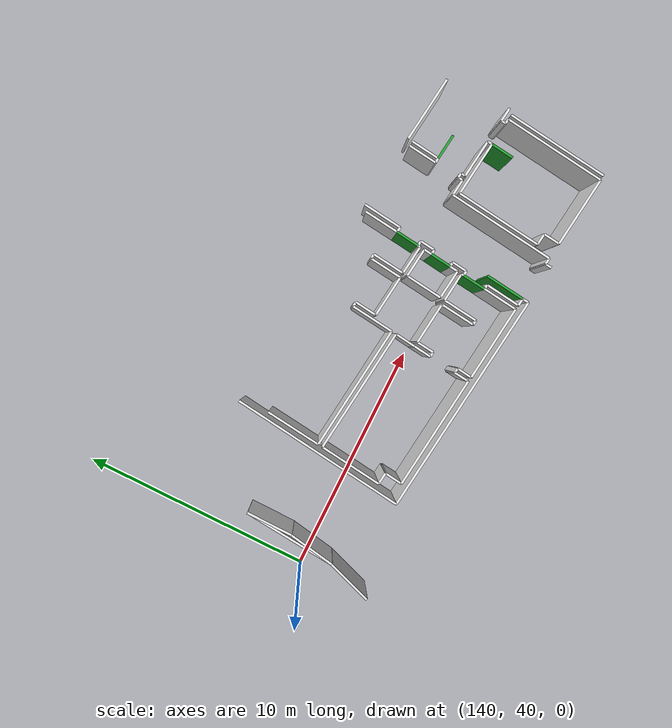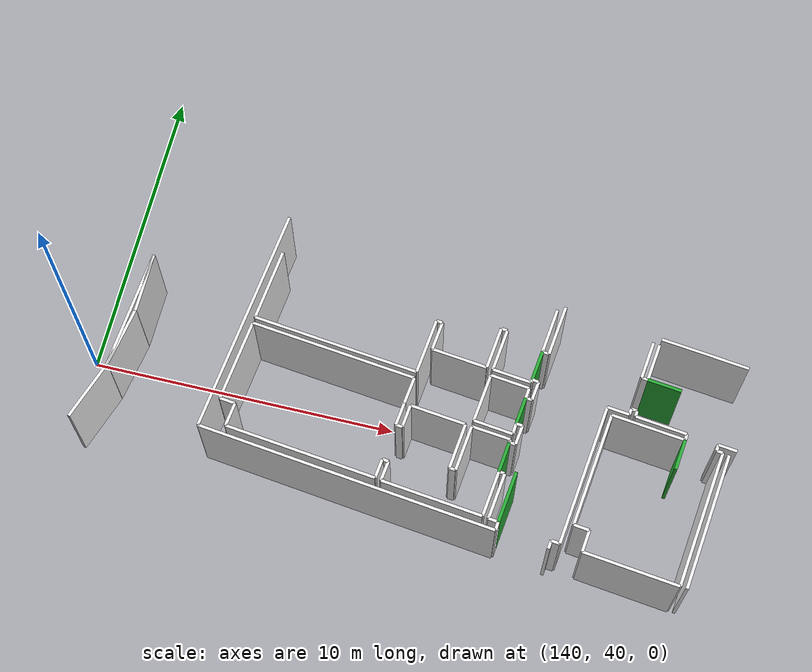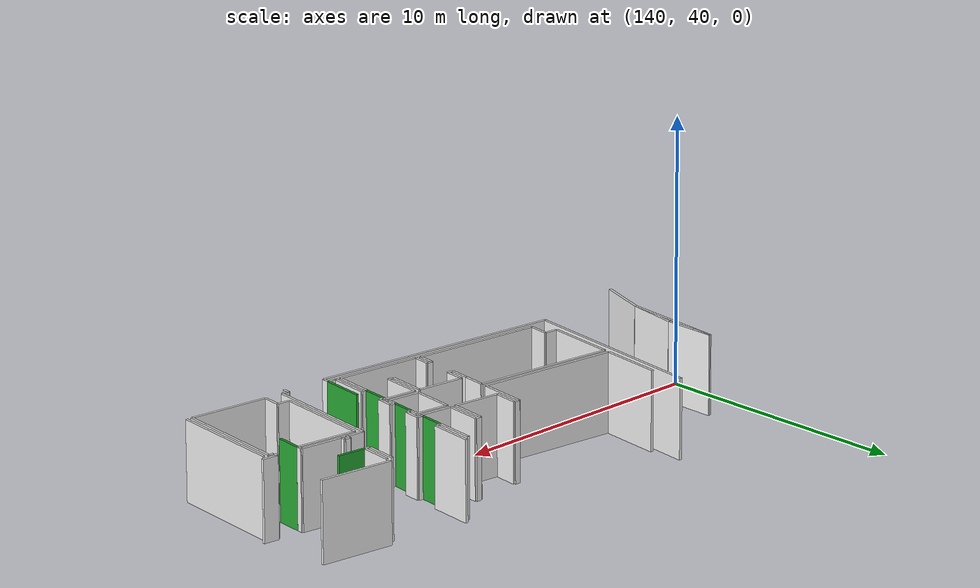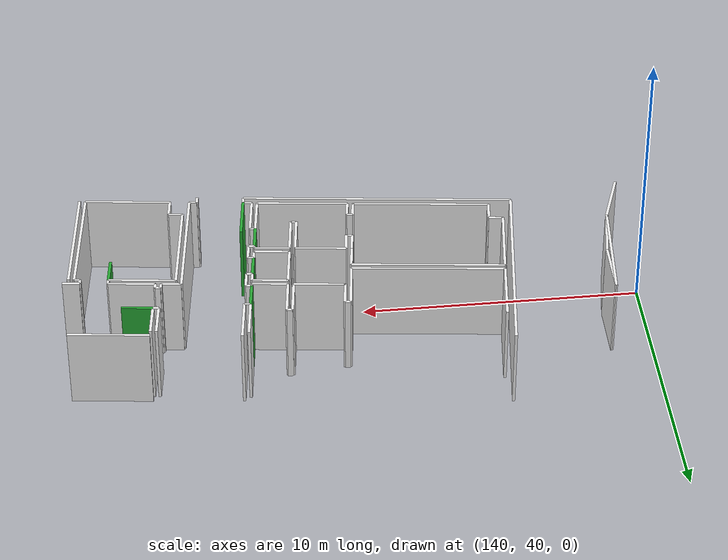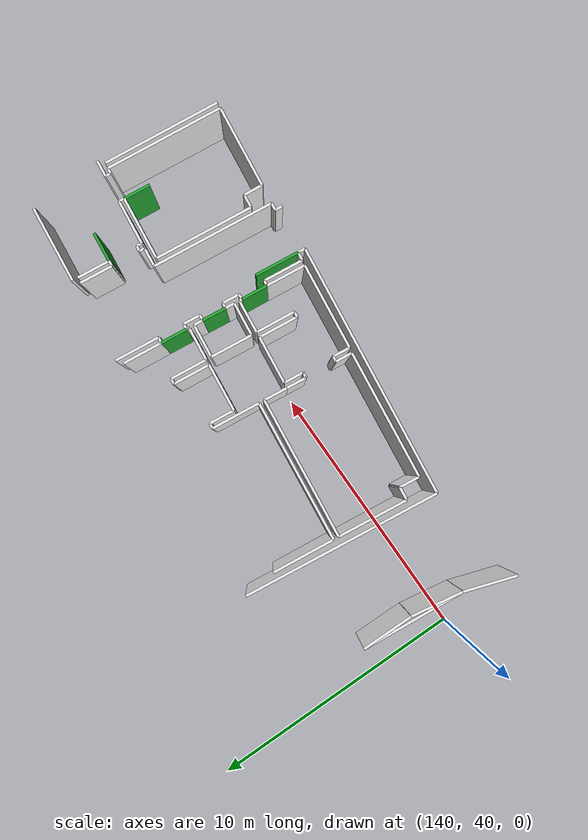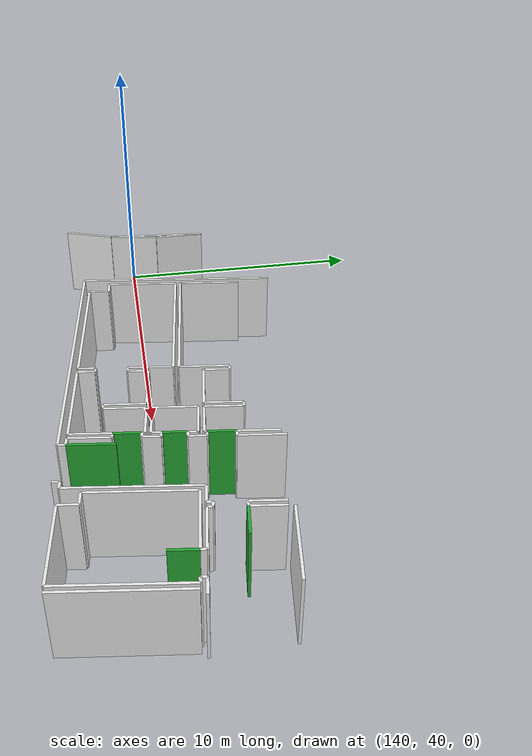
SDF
<sdf version="1.6">
 <world name="default">
  <model name="wall_153.8_39.0_1.5">
   <static>true</static>
   <pose>153.77499999999418 38.99500000011176 1.5 0 0 -1.6814535479881518</pose>
   <link name="link">
    <visual name="visual">
     <geometry><box><size>0.9960923654221514 0.1 3</size></box></geometry>
     <material>
      <script><uri>file://media/materials/scripts/gazebo.material</uri><name>Gazebo/Green</name></script>
     </material>
    </visual>
    <collision name="collision"><geometry><box><size>0.9960923654221514 0.1 3</size></box></geometry></collision>
   </link>
  </model>
  <model name="wall_154.0_40.6_1.5">
   <static>true</static>
   <pose>153.9649999999965 40.574999999953434 1.5 0 0 -1.693768196390317</pose>
   <link name="link">
    <visual name="visual">
     <geometry><box><size>0.8967719889926413 0.1 3</size></box></geometry>
     <material>
      <script><uri>file://media/materials/scripts/gazebo.material</uri><name>Gazebo/Green</name></script>
     </material>
    </visual>
    <collision name="collision"><geometry><box><size>0.8967719889926413 0.1 3</size></box></geometry></collision>
   </link>
  </model>
  <model name="wall_154.2_42.2_1.5">
   <static>true</static>
   <pose>154.15000000002328 42.15500000002794 1.5 0 0 -1.6914199953995817</pose>
   <link name="link">
    <visual name="visual">
     <geometry><box><size>0.997246208074735 0.1 3</size></box></geometry>
     <material>
      <script><uri>file://media/materials/scripts/gazebo.material</uri><name>Gazebo/Green</name></script>
     </material>
    </visual>
    <collision name="collision"><geometry><box><size>0.997246208074735 0.1 3</size></box></geometry></collision>
   </link>
  </model>
  <model name="wall_158.1_42.4_1.5">
   <static>true</static>
   <pose>158.12500000017462 42.4250000002794 1.5 0 0 -0.11870533700792274</pose>
   <link name="link">
    <visual name="visual">
     <geometry><box><size>1.0977249203061936 0.1 3</size></box></geometry>
     <material>
      <script><uri>file://media/materials/scripts/gazebo.material</uri><name>Gazebo/Green</name></script>
     </material>
    </visual>
    <collision name="collision"><geometry><box><size>1.0977249203061936 0.1 3</size></box></geometry></collision>
   </link>
  </model>
  <model name="wall_154.1_37.8_1.5">
   <static>true</static>
   <pose>154.14000000007218 37.78000000026077 1.5 0 0 1.450892341329931</pose>
   <link name="link">
    <visual name="visual">
     <geometry><box><size>1.6720047848523714 0.1 3</size></box></geometry>
     <material>
      <script><uri>file://media/materials/scripts/gazebo.material</uri><name>Gazebo/Green</name></script>
     </material>
    </visual>
    <collision name="collision"><geometry><box><size>1.6720047848523714 0.1 3</size></box></geometry></collision>
   </link>
  </model>
  <model name="wall_159.0_40.3_1.5">
   <static>true</static>
   <pose>158.98999999993248 40.31500000017695 1.5 0 0 -1.6914199955154703</pose>
   <link name="link">
    <visual name="visual">
     <geometry><box><size>0.9972462080887433 0.1 3</size></box></geometry>
     <material>
      <script><uri>file://media/materials/scripts/gazebo.material</uri><name>Gazebo/Green</name></script>
     </material>
    </visual>
    <collision name="collision"><geometry><box><size>0.9972462080887433 0.1 3</size></box></geometry></collision>
   </link>
  </model>
  <model name="wall_150.4_39.6_1.5">
   <static>true</static>
   <pose>150.3649999999907 39.61500000022352 1.5 0 0 1.4513674008194029</pose>
   <link name="link">
    <visual name="visual">
     <geometry><box><size>0.7553806987169667 0.1 3</size></box></geometry>
     <material>
      <script><uri>file://media/materials/scripts/gazebo.material</uri><name>Gazebo/White</name></script>
     </material>
    </visual>
    <collision name="collision"><geometry><box><size>0.7553806987169667 0.1 3</size></box></geometry></collision>
   </link>
  </model>
  <model name="wall_150.5_40.4_1.5">
   <static>true</static>
   <pose>150.4649999999965 40.43000000016764 1.5 0 0 1.4464413321830076</pose>
   <link name="link">
    <visual name="visual">
     <geometry><box><size>0.8868483522074317 0.1 3</size></box></geometry>
     <material>
      <script><uri>file://media/materials/scripts/gazebo.material</uri><name>Gazebo/White</name></script>
     </material>
    </visual>
    <collision name="collision"><geometry><box><size>0.8868483522074317 0.1 3</size></box></geometry></collision>
   </link>
  </model>
  <model name="wall_147.8_41.2_1.5">
   <static>true</static>
   <pose>147.83500000002095 41.18500000005588 1.5 0 0 3.0248080581405947</pose>
   <link name="link">
    <visual name="visual">
     <geometry><box><size>5.406829015218547 0.1 3</size></box></geometry>
     <material>
      <script><uri>file://media/materials/scripts/gazebo.material</uri><name>Gazebo/White</name></script>
     </material>
    </visual>
    <collision name="collision"><geometry><box><size>5.406829015218547 0.1 3</size></box></geometry></collision>
   </link>
  </model>
  <model name="wall_145.0_40.2_1.5">
   <static>true</static>
   <pose>144.9900000000198 40.16500000003725 1.5 0 0 -1.690077564147906</pose>
   <link name="link">
    <visual name="visual">
     <geometry><box><size>2.689107658612167 0.1 3</size></box></geometry>
     <material>
      <script><uri>file://media/materials/scripts/gazebo.material</uri><name>Gazebo/White</name></script>
     </material>
    </visual>
    <collision name="collision"><geometry><box><size>2.689107658612167 0.1 3</size></box></geometry></collision>
   </link>
  </model>
  <model name="wall_145.1_38.8_1.5">
   <static>true</static>
   <pose>145.0800000000163 38.800000000046566 1.5 0 0 -0.11942892612851068</pose>
   <link name="link">
    <visual name="visual">
     <geometry><box><size>0.5035871324872246 0.1 3</size></box></geometry>
     <material>
      <script><uri>file://media/materials/scripts/gazebo.material</uri><name>Gazebo/White</name></script>
     </material>
    </visual>
    <collision name="collision"><geometry><box><size>0.5035871324872246 0.1 3</size></box></geometry></collision>
   </link>
  </model>
  <model name="wall_145.3_38.4_1.5">
   <static>true</static>
   <pose>145.2850000000035 38.389999999897555 1.5 0 0 -1.6886684299881376</pose>
   <link name="link">
    <visual name="visual">
     <geometry><box><size>0.7653103947893748 0.1 3</size></box></geometry>
     <material>
      <script><uri>file://media/materials/scripts/gazebo.material</uri><name>Gazebo/White</name></script>
     </material>
    </visual>
    <collision name="collision"><geometry><box><size>0.7653103947893748 0.1 3</size></box></geometry></collision>
   </link>
  </model>
  <model name="wall_147.7_37.7_1.5">
   <static>true</static>
   <pose>147.67499999998836 37.7249999998603 1.5 0 0 -0.11651301006280392</pose>
   <link name="link">
    <visual name="visual">
     <geometry><box><size>4.90324382422122 0.1 3</size></box></geometry>
     <material>
      <script><uri>file://media/materials/scripts/gazebo.material</uri><name>Gazebo/White</name></script>
     </material>
    </visual>
    <collision name="collision"><geometry><box><size>4.90324382422122 0.1 3</size></box></geometry></collision>
   </link>
  </model>
  <model name="wall_150.1_37.8_1.5">
   <static>true</static>
   <pose>150.14499999998952 37.75499999988824 1.5 0 0 1.4601391055905788</pose>
   <link name="link">
    <visual name="visual">
     <geometry><box><size>0.6338769595593153 0.1 3</size></box></geometry>
     <material>
      <script><uri>file://media/materials/scripts/gazebo.material</uri><name>Gazebo/White</name></script>
     </material>
    </visual>
    <collision name="collision"><geometry><box><size>0.6338769595593153 0.1 3</size></box></geometry></collision>
   </link>
  </model>
  <model name="wall_150.3_38.1_1.5">
   <static>true</static>
   <pose>150.27999999999884 38.05499999993481 1.5 0 0 -0.14888994659904642</pose>
   <link name="link">
    <visual name="visual">
     <geometry><box><size>0.20223748414268597 0.1 3</size></box></geometry>
     <material>
      <script><uri>file://media/materials/scripts/gazebo.material</uri><name>Gazebo/White</name></script>
     </material>
    </visual>
    <collision name="collision"><geometry><box><size>0.20223748414268597 0.1 3</size></box></geometry></collision>
   </link>
  </model>
  <model name="wall_150.3_37.7_1.5">
   <static>true</static>
   <pose>150.3399999999965 37.71999999997206 1.5 0 0 -1.695151321341658</pose>
   <link name="link">
    <visual name="visual">
     <geometry><box><size>0.6449806199952839 0.1 3</size></box></geometry>
     <material>
      <script><uri>file://media/materials/scripts/gazebo.material</uri><name>Gazebo/White</name></script>
     </material>
    </visual>
    <collision name="collision"><geometry><box><size>0.6449806199952839 0.1 3</size></box></geometry></collision>
   </link>
  </model>
  <model name="wall_151.9_37.2_1.5">
   <static>true</static>
   <pose>151.9199999999837 37.20999999996275 1.5 0 0 -0.11675057835937525</pose>
   <link name="link">
    <visual name="visual">
     <geometry><box><size>3.2622078413023767 0.1 3</size></box></geometry>
     <material>
      <script><uri>file://media/materials/scripts/gazebo.material</uri><name>Gazebo/White</name></script>
     </material>
    </visual>
    <collision name="collision"><geometry><box><size>3.2622078413023767 0.1 3</size></box></geometry></collision>
   </link>
  </model>
  <model name="wall_153.6_37.8_1.5">
   <static>true</static>
   <pose>153.62999999997555 37.76000000000931 1.5 0 0 1.449769106988834</pose>
   <link name="link">
    <visual name="visual">
     <geometry><box><size>1.4909057649436974 0.1 3</size></box></geometry>
     <material>
      <script><uri>file://media/materials/scripts/gazebo.material</uri><name>Gazebo/White</name></script>
     </material>
    </visual>
    <collision name="collision"><geometry><box><size>1.4909057649436974 0.1 3</size></box></geometry></collision>
   </link>
  </model>
  <model name="wall_153.8_39.5_1.5">
   <static>true</static>
   <pose>153.83500000002095 39.54000000003725 1.5 0 0 1.4711276738426837</pose>
   <link name="link">
    <visual name="visual">
     <geometry><box><size>0.10049875584145537 0.1 3</size></box></geometry>
     <material>
      <script><uri>file://media/materials/scripts/gazebo.material</uri><name>Gazebo/White</name></script>
     </material>
    </visual>
    <collision name="collision"><geometry><box><size>0.10049875584145537 0.1 3</size></box></geometry></collision>
   </link>
  </model>
  <model name="wall_153.2_39.7_1.5">
   <static>true</static>
   <pose>153.22000000000116 39.65999999991618 1.5 0 0 3.0291655226601732</pose>
   <link name="link">
    <visual name="visual">
     <geometry><box><size>1.2478781992477335 0.1 3</size></box></geometry>
     <material>
      <script><uri>file://media/materials/scripts/gazebo.material</uri><name>Gazebo/White</name></script>
     </material>
    </visual>
    <collision name="collision"><geometry><box><size>1.2478781992477335 0.1 3</size></box></geometry></collision>
   </link>
  </model>
  <model name="wall_152.5_39.0_1.5">
   <static>true</static>
   <pose>152.51499999998487 38.98999999999069 1.5 0 0 -1.6851599802083586</pose>
   <link name="link">
    <visual name="visual">
     <geometry><box><size>1.4897315194152685 0.1 3</size></box></geometry>
     <material>
      <script><uri>file://media/materials/scripts/gazebo.material</uri><name>Gazebo/White</name></script>
     </material>
    </visual>
    <collision name="collision"><geometry><box><size>1.4897315194152685 0.1 3</size></box></geometry></collision>
   </link>
  </model>
  <model name="wall_152.3_38.3_1.5">
   <static>true</static>
   <pose>152.3299999999872 38.26000000000931 1.5 0 0 3.0419240010121844</pose>
   <link name="link">
    <visual name="visual">
     <geometry><box><size>0.20099751243585498 0.1 3</size></box></geometry>
     <material>
      <script><uri>file://media/materials/scripts/gazebo.material</uri><name>Gazebo/White</name></script>
     </material>
    </visual>
    <collision name="collision"><geometry><box><size>0.20099751243585498 0.1 3</size></box></geometry></collision>
   </link>
  </model>
  <model name="wall_152.3_39.0_1.5">
   <static>true</static>
   <pose>152.31500000000233 39.01000000000931 1.5 0 0 1.4564326733426174</pose>
   <link name="link">
    <visual name="visual">
     <geometry><box><size>1.4897315194219107 0.1 3</size></box></geometry>
     <material>
      <script><uri>file://media/materials/scripts/gazebo.material</uri><name>Gazebo/White</name></script>
     </material>
    </visual>
    <collision name="collision"><geometry><box><size>1.4897315194219107 0.1 3</size></box></geometry></collision>
   </link>
  </model>
  <model name="wall_151.5_39.9_1.5">
   <static>true</static>
   <pose>151.50500000000466 39.85499999998137 1.5 0 0 3.0248080581431034</pose>
   <link name="link">
    <visual name="visual">
     <geometry><box><size>1.8022763384447233 0.1 3</size></box></geometry>
     <material>
      <script><uri>file://media/materials/scripts/gazebo.material</uri><name>Gazebo/White</name></script>
     </material>
    </visual>
    <collision name="collision"><geometry><box><size>1.8022763384447233 0.1 3</size></box></geometry></collision>
   </link>
  </model>
  <model name="wall_150.6_39.6_1.5">
   <static>true</static>
   <pose>150.57000000000698 39.59000000008382 1.5 0 0 -1.6784861976067038</pose>
   <link name="link">
    <visual name="visual">
     <geometry><box><size>0.7443117623918901 0.1 3</size></box></geometry>
     <material>
      <script><uri>file://media/materials/scripts/gazebo.material</uri><name>Gazebo/White</name></script>
     </material>
    </visual>
    <collision name="collision"><geometry><box><size>0.7443117623918901 0.1 3</size></box></geometry></collision>
   </link>
  </model>
  <model name="wall_150.4_39.2_1.5">
   <static>true</static>
   <pose>150.42500000001746 39.230000000214204 1.5 0 0 3.0466409471685547</pose>
   <link name="link">
    <visual name="visual">
     <geometry><box><size>0.21095023111991618 0.1 3</size></box></geometry>
     <material>
      <script><uri>file://media/materials/scripts/gazebo.material</uri><name>Gazebo/White</name></script>
     </material>
    </visual>
    <collision name="collision"><geometry><box><size>0.21095023111991618 0.1 3</size></box></geometry></collision>
   </link>
  </model>
  <model name="wall_160.2_38.4_1.5">
   <static>true</static>
   <pose>160.17499999998836 38.44000000017695 1.5 0 0 -1.690673321615393</pose>
   <link name="link">
    <visual name="visual">
     <geometry><box><size>4.4318055010582365 0.1 3</size></box></geometry>
     <material>
      <script><uri>file://media/materials/scripts/gazebo.material</uri><name>Gazebo/White</name></script>
     </material>
    </visual>
    <collision name="collision"><geometry><box><size>4.4318055010582365 0.1 3</size></box></geometry></collision>
   </link>
  </model>
  <model name="wall_154.0_41.2_1.5">
   <static>true</static>
   <pose>154.04000000000815 41.18999999994412 1.5 0 0 1.4536875822379653</pose>
   <link name="link">
    <visual name="visual">
     <geometry><box><size>0.34234485522203445 0.1 3</size></box></geometry>
     <material>
      <script><uri>file://media/materials/scripts/gazebo.material</uri><name>Gazebo/White</name></script>
     </material>
    </visual>
    <collision name="collision"><geometry><box><size>0.34234485522203445 0.1 3</size></box></geometry></collision>
   </link>
  </model>
  <model name="wall_153.4_41.4_1.5">
   <static>true</static>
   <pose>153.43499999999767 41.43499999982305 1.5 0 0 3.022163727644903</pose>
   <link name="link">
    <visual name="visual">
     <geometry><box><size>1.258967831190321 0.1 3</size></box></geometry>
     <material>
      <script><uri>file://media/materials/scripts/gazebo.material</uri><name>Gazebo/White</name></script>
     </material>
    </visual>
    <collision name="collision"><geometry><box><size>1.258967831190321 0.1 3</size></box></geometry></collision>
   </link>
  </model>
  <model name="wall_152.7_40.7_1.5">
   <static>true</static>
   <pose>152.7149999999965 40.71999999997206 1.5 0 0 -1.6904748161031404</pose>
   <link name="link">
    <visual name="visual">
     <geometry><box><size>1.5913830458958753 0.1 3</size></box></geometry>
     <material>
      <script><uri>file://media/materials/scripts/gazebo.material</uri><name>Gazebo/White</name></script>
     </material>
    </visual>
    <collision name="collision"><geometry><box><size>1.5913830458958753 0.1 3</size></box></geometry></collision>
   </link>
  </model>
  <model name="wall_153.2_39.9_1.5">
   <static>true</static>
   <pose>153.24499999999534 39.85499999998137 1.5 0 0 -0.11942892631213106</pose>
   <link name="link">
    <visual name="visual">
     <geometry><box><size>1.2589678312458021 0.1 3</size></box></geometry>
     <material>
      <script><uri>file://media/materials/scripts/gazebo.material</uri><name>Gazebo/White</name></script>
     </material>
    </visual>
    <collision name="collision"><geometry><box><size>1.2589678312458021 0.1 3</size></box></geometry></collision>
   </link>
  </model>
  <model name="wall_153.9_40.0_1.5">
   <static>true</static>
   <pose>153.88999999998487 39.954999999841675 1.5 0 0 1.4570043197403058</pose>
   <link name="link">
    <visual name="visual">
     <geometry><box><size>0.35227829916632136 0.1 3</size></box></geometry>
     <material>
      <script><uri>file://media/materials/scripts/gazebo.material</uri><name>Gazebo/White</name></script>
     </material>
    </visual>
    <collision name="collision"><geometry><box><size>0.35227829916632136 0.1 3</size></box></geometry></collision>
   </link>
  </model>
  <model name="wall_159.2_43.8_1.5">
   <static>true</static>
   <pose>159.1700000000128 43.75 1.5 0 0 3.0216044435658165</pose>
   <link name="link">
    <visual name="visual">
     <geometry><box><size>2.840422503772646 0.1 3</size></box></geometry>
     <material>
      <script><uri>file://media/materials/scripts/gazebo.material</uri><name>Gazebo/White</name></script>
     </material>
    </visual>
    <collision name="collision"><geometry><box><size>2.840422503772646 0.1 3</size></box></geometry></collision>
   </link>
  </model>
  <model name="wall_153.8_38.5_1.5">
   <static>true</static>
   <pose>153.81499999997322 38.48999999999069 1.5 0 0 3.0367157147638757</pose>
   <link name="link">
    <visual name="visual">
     <geometry><box><size>0.19104973174969345 0.1 3</size></box></geometry>
     <material>
      <script><uri>file://media/materials/scripts/gazebo.material</uri><name>Gazebo/White</name></script>
     </material>
    </visual>
    <collision name="collision"><geometry><box><size>0.19104973174969345 0.1 3</size></box></geometry></collision>
   </link>
  </model>
  <model name="wall_153.9_39.5_1.5">
   <static>true</static>
   <pose>153.93000000002212 39.480000000214204 1.5 0 0 -0.09966865257760905</pose>
   <link name="link">
    <visual name="visual">
     <geometry><box><size>0.20099751243585498 0.1 3</size></box></geometry>
     <material>
      <script><uri>file://media/materials/scripts/gazebo.material</uri><name>Gazebo/White</name></script>
     </material>
    </visual>
    <collision name="collision"><geometry><box><size>0.20099751243585498 0.1 3</size></box></geometry></collision>
   </link>
  </model>
  <model name="wall_154.1_39.8_1.5">
   <static>true</static>
   <pose>154.07000000000698 39.79000000003725 1.5 0 0 1.446441332248135</pose>
   <link name="link">
    <visual name="visual">
     <geometry><box><size>0.6449806195259987 0.1 3</size></box></geometry>
     <material>
      <script><uri>file://media/materials/scripts/gazebo.material</uri><name>Gazebo/White</name></script>
     </material>
    </visual>
    <collision name="collision"><geometry><box><size>0.6449806195259987 0.1 3</size></box></geometry></collision>
   </link>
  </model>
  <model name="wall_154.0_40.1_1.5">
   <static>true</static>
   <pose>154.0099999999802 40.11999999987893 1.5 0 0 3.0419240010121844</pose>
   <link name="link">
    <visual name="visual">
     <geometry><box><size>0.20099751243585498 0.1 3</size></box></geometry>
     <material>
      <script><uri>file://media/materials/scripts/gazebo.material</uri><name>Gazebo/White</name></script>
     </material>
    </visual>
    <collision name="collision"><geometry><box><size>0.20099751243585498 0.1 3</size></box></geometry></collision>
   </link>
  </model>
  <model name="wall_154.1_41.0_1.5">
   <static>true</static>
   <pose>154.11999999999534 41.01000000000931 1.5 0 0 -0.09966865260642473</pose>
   <link name="link">
    <visual name="visual">
     <geometry><box><size>0.20099751237793617 0.1 3</size></box></geometry>
     <material>
      <script><uri>file://media/materials/scripts/gazebo.material</uri><name>Gazebo/White</name></script>
     </material>
    </visual>
    <collision name="collision"><geometry><box><size>0.20099751237793617 0.1 3</size></box></geometry></collision>
   </link>
  </model>
  <model name="wall_154.3_41.3_1.5">
   <static>true</static>
   <pose>154.2599999999802 41.31499999994412 1.5 0 0 1.444488209684028</pose>
   <link name="link">
    <visual name="visual">
     <geometry><box><size>0.6350590522634818 0.1 3</size></box></geometry>
     <material>
      <script><uri>file://media/materials/scripts/gazebo.material</uri><name>Gazebo/White</name></script>
     </material>
    </visual>
    <collision name="collision"><geometry><box><size>0.6350590522634818 0.1 3</size></box></geometry></collision>
   </link>
  </model>
  <model name="wall_154.2_41.6_1.5">
   <static>true</static>
   <pose>154.19500000000698 41.64500000001863 1.5 0 0 2.999695597743866</pose>
   <link name="link">
    <visual name="visual">
     <geometry><box><size>0.21213203435596426 0.1 3</size></box></geometry>
     <material>
      <script><uri>file://media/materials/scripts/gazebo.material</uri><name>Gazebo/White</name></script>
     </material>
    </visual>
    <collision name="collision"><geometry><box><size>0.21213203435596426 0.1 3</size></box></geometry></collision>
   </link>
  </model>
  <model name="wall_154.3_42.6_1.5">
   <static>true</static>
   <pose>154.31500000000233 42.63500000000931 1.5 0 0 -0.14189705367284136</pose>
   <link name="link">
    <visual name="visual">
     <geometry><box><size>0.2121320342901098 0.1 3</size></box></geometry>
     <material>
      <script><uri>file://media/materials/scripts/gazebo.material</uri><name>Gazebo/White</name></script>
     </material>
    </visual>
    <collision name="collision"><geometry><box><size>0.2121320342901098 0.1 3</size></box></geometry></collision>
   </link>
  </model>
  <model name="wall_154.5_43.5_1.5">
   <static>true</static>
   <pose>154.51999999998952 43.45999999996275 1.5 0 0 1.4523063676091028</pose>
   <link name="link">
    <visual name="visual">
     <geometry><box><size>1.6918628783099707 0.1 3</size></box></geometry>
     <material>
      <script><uri>file://media/materials/scripts/gazebo.material</uri><name>Gazebo/White</name></script>
     </material>
    </visual>
    <collision name="collision"><geometry><box><size>1.6918628783099707 0.1 3</size></box></geometry></collision>
   </link>
  </model>
  <model name="wall_157.5_43.1_1.5">
   <static>true</static>
   <pose>157.4550000000163 43.12999999988824 1.5 0 0 -1.6911791475924711</pose>
   <link name="link">
    <visual name="visual">
     <geometry><box><size>1.2490396313013081 0.1 3</size></box></geometry>
     <material>
      <script><uri>file://media/materials/scripts/gazebo.material</uri><name>Gazebo/White</name></script>
     </material>
    </visual>
    <collision name="collision"><geometry><box><size>1.2490396313013081 0.1 3</size></box></geometry></collision>
   </link>
  </model>
  <model name="wall_157.5_42.5_1.5">
   <static>true</static>
   <pose>157.48000000001048 42.5 1.5 0 0 -0.09966865027235515</pose>
   <link name="link">
    <visual name="visual">
     <geometry><box><size>0.20099751238951993 0.1 3</size></box></geometry>
     <material>
      <script><uri>file://media/materials/scripts/gazebo.material</uri><name>Gazebo/White</name></script>
     </material>
    </visual>
    <collision name="collision"><geometry><box><size>0.20099751238951993 0.1 3</size></box></geometry></collision>
   </link>
  </model>
  <model name="wall_157.4_41.4_1.5">
   <static>true</static>
   <pose>157.35500000001048 41.41500000003725 1.5 0 0 2.9849907752705747</pose>
   <link name="link">
    <visual name="visual">
     <geometry><box><size>0.19235384065968367 0.1 3</size></box></geometry>
     <material>
      <script><uri>file://media/materials/scripts/gazebo.material</uri><name>Gazebo/White</name></script>
     </material>
    </visual>
    <collision name="collision"><geometry><box><size>0.19235384065968367 0.1 3</size></box></geometry></collision>
   </link>
  </model>
  <model name="wall_157.2_41.3_1.5">
   <static>true</static>
   <pose>157.24499999999534 41.330000000074506 1.5 0 0 -1.719686274404394</pose>
   <link name="link">
    <visual name="visual">
     <geometry><box><size>0.20223748434991518 0.1 3</size></box></geometry>
     <material>
      <script><uri>file://media/materials/scripts/gazebo.material</uri><name>Gazebo/White</name></script>
     </material>
    </visual>
    <collision name="collision"><geometry><box><size>0.20223748434991518 0.1 3</size></box></geometry></collision>
   </link>
  </model>
  <model name="wall_156.9_41.3_1.5">
   <static>true</static>
   <pose>156.88000000000466 41.27000000001863 1.5 0 0 3.027800646333516</pose>
   <link name="link">
    <visual name="visual">
     <geometry><box><size>0.7045565981145364 0.1 3</size></box></geometry>
     <material>
      <script><uri>file://media/materials/scripts/gazebo.material</uri><name>Gazebo/White</name></script>
     </material>
    </visual>
    <collision name="collision"><geometry><box><size>0.7045565981145364 0.1 3</size></box></geometry></collision>
   </link>
  </model>
  <model name="wall_156.2_39.0_1.5">
   <static>true</static>
   <pose>156.25 39.015000000130385 1.5 0 0 -1.6922006861437495</pose>
   <link name="link">
    <visual name="visual">
     <geometry><box><size>4.624035034328207 0.1 3</size></box></geometry>
     <material>
      <script><uri>file://media/materials/scripts/gazebo.material</uri><name>Gazebo/White</name></script>
     </material>
    </visual>
    <collision name="collision"><geometry><box><size>4.624035034328207 0.1 3</size></box></geometry></collision>
   </link>
  </model>
  <model name="wall_155.8_36.7_1.5">
   <static>true</static>
   <pose>155.83499999999185 36.735000000102445 1.5 0 0 3.0309354331494087</pose>
   <link name="link">
    <visual name="visual">
     <geometry><box><size>0.271661554082157 0.1 3</size></box></geometry>
     <material>
      <script><uri>file://media/materials/scripts/gazebo.material</uri><name>Gazebo/White</name></script>
     </material>
    </visual>
    <collision name="collision"><geometry><box><size>0.271661554082157 0.1 3</size></box></geometry></collision>
   </link>
  </model>
  <model name="wall_153.9_37.0_1.5">
   <static>true</static>
   <pose>153.8849999999802 36.97000000020489 1.5 0 0 3.0132694257848427</pose>
   <link name="link">
    <visual name="visual">
     <geometry><box><size>0.31256999216421383 0.1 3</size></box></geometry>
     <material>
      <script><uri>file://media/materials/scripts/gazebo.material</uri><name>Gazebo/White</name></script>
     </material>
    </visual>
    <collision name="collision"><geometry><box><size>0.31256999216421383 0.1 3</size></box></geometry></collision>
   </link>
  </model>
  <model name="wall_153.8_37.7_1.5">
   <static>true</static>
   <pose>153.81999999997788 37.735000000102445 1.5 0 0 1.4505735401188582</pose>
   <link name="link">
    <visual name="visual">
     <geometry><box><size>1.5008331017391296 0.1 3</size></box></geometry>
     <material>
      <script><uri>file://media/materials/scripts/gazebo.material</uri><name>Gazebo/White</name></script>
     </material>
    </visual>
    <collision name="collision"><geometry><box><size>1.5008331017391296 0.1 3</size></box></geometry></collision>
   </link>
  </model>
  <model name="wall_156.7_37.0_1.5">
   <static>true</static>
   <pose>156.70999999999185 36.97999999998137 1.5 0 0 1.457004319658224</pose>
   <link name="link">
    <visual name="visual">
     <geometry><box><size>0.704556598339252 0.1 3</size></box></geometry>
     <material>
      <script><uri>file://media/materials/scripts/gazebo.material</uri><name>Gazebo/White</name></script>
     </material>
    </visual>
    <collision name="collision"><geometry><box><size>0.704556598339252 0.1 3</size></box></geometry></collision>
   </link>
  </model>
  <model name="wall_156.5_37.4_1.5">
   <static>true</static>
   <pose>156.50500000000466 37.360000000102445 1.5 0 0 3.019750216455228</pose>
   <link name="link">
    <visual name="visual">
     <geometry><box><size>0.4936598018854468 0.1 3</size></box></geometry>
     <material>
      <script><uri>file://media/materials/scripts/gazebo.material</uri><name>Gazebo/White</name></script>
     </material>
    </visual>
    <collision name="collision"><geometry><box><size>0.4936598018854468 0.1 3</size></box></geometry></collision>
   </link>
  </model>
  <model name="wall_156.5_39.2_1.5">
   <static>true</static>
   <pose>156.48500000001513 39.23999999999069 1.5 0 0 1.449769106973541</pose>
   <link name="link">
    <visual name="visual">
     <geometry><box><size>3.7272644121316296 0.1 3</size></box></geometry>
     <material>
      <script><uri>file://media/materials/scripts/gazebo.material</uri><name>Gazebo/White</name></script>
     </material>
    </visual>
    <collision name="collision"><geometry><box><size>3.7272644121316296 0.1 3</size></box></geometry></collision>
   </link>
  </model>
  <model name="wall_157.9_40.9_1.5">
   <static>true</static>
   <pose>157.88000000000466 40.949999999953434 1.5 0 0 -0.11909188516448511</pose>
   <link name="link">
    <visual name="visual">
     <geometry><box><size>2.3566925976318402 0.1 3</size></box></geometry>
     <material>
      <script><uri>file://media/materials/scripts/gazebo.material</uri><name>Gazebo/White</name></script>
     </material>
    </visual>
    <collision name="collision"><geometry><box><size>2.3566925976318402 0.1 3</size></box></geometry></collision>
   </link>
  </model>
  <model name="wall_160.1_40.7_1.5">
   <static>true</static>
   <pose>160.13999999998487 40.67999999993481 1.5 0 0 -0.09966865257760905</pose>
   <link name="link">
    <visual name="visual">
     <geometry><box><size>0.20099751243585498 0.1 3</size></box></geometry>
     <material>
      <script><uri>file://media/materials/scripts/gazebo.material</uri><name>Gazebo/White</name></script>
     </material>
    </visual>
    <collision name="collision"><geometry><box><size>0.20099751243585498 0.1 3</size></box></geometry></collision>
   </link>
  </model>
  <model name="wall_160.0_38.5_1.5">
   <static>true</static>
   <pose>159.97000000000116 38.46999999997206 1.5 0 0 -1.6929129367175275</pose>
   <link name="link">
    <visual name="visual">
     <geometry><box><size>4.433012519625655 0.1 3</size></box></geometry>
     <material>
      <script><uri>file://media/materials/scripts/gazebo.material</uri><name>Gazebo/White</name></script>
     </material>
    </visual>
    <collision name="collision"><geometry><box><size>4.433012519625655 0.1 3</size></box></geometry></collision>
   </link>
  </model>
  <model name="wall_158.2_36.4_1.5">
   <static>true</static>
   <pose>158.18499999999767 36.449999999953434 1.5 0 0 3.0233351444942267</pose>
   <link name="link">
    <visual name="visual">
     <geometry><box><size>3.0513111935814474 0.1 3</size></box></geometry>
     <material>
      <script><uri>file://media/materials/scripts/gazebo.material</uri><name>Gazebo/White</name></script>
     </material>
    </visual>
    <collision name="collision"><geometry><box><size>3.0513111935814474 0.1 3</size></box></geometry></collision>
   </link>
  </model>
  <model name="wall_154.3_43.4_1.5">
   <static>true</static>
   <pose>154.2950000000128 43.39500000001863 1.5 0 0 -1.6843990475228636</pose>
   <link name="link">
    <visual name="visual">
     <geometry><box><size>1.4996666298416261 0.1 3</size></box></geometry>
     <material>
      <script><uri>file://media/materials/scripts/gazebo.material</uri><name>Gazebo/White</name></script>
     </material>
    </visual>
    <collision name="collision"><geometry><box><size>1.4996666298416261 0.1 3</size></box></geometry></collision>
   </link>
  </model>
  <model name="wall_154.1_41.6_1.5">
   <static>true</static>
   <pose>154.08500000002095 41.610000000102445 1.5 0 0 -1.6704649792860586</pose>
   <link name="link">
    <visual name="visual">
     <geometry><box><size>0.10049875630480566 0.1 3</size></box></geometry>
     <material>
      <script><uri>file://media/materials/scripts/gazebo.material</uri><name>Gazebo/White</name></script>
     </material>
    </visual>
    <collision name="collision"><geometry><box><size>0.10049875630480566 0.1 3</size></box></geometry></collision>
   </link>
  </model>
  <model name="wall_153.5_41.6_1.5">
   <static>true</static>
   <pose>153.4550000000163 41.63500000000931 1.5 0 0 3.022163727644903</pose>
   <link name="link">
    <visual name="visual">
     <geometry><box><size>1.258967831190321 0.1 3</size></box></geometry>
     <material>
      <script><uri>file://media/materials/scripts/gazebo.material</uri><name>Gazebo/White</name></script>
     </material>
    </visual>
    <collision name="collision"><geometry><box><size>1.258967831190321 0.1 3</size></box></geometry></collision>
   </link>
  </model>
  <model name="wall_152.9_42.4_1.5">
   <static>true</static>
   <pose>152.9100000000035 42.39999999990687 1.5 0 0 1.4553696664370197</pose>
   <link name="link">
    <visual name="visual">
     <geometry><box><size>1.3892443988310157 0.1 3</size></box></geometry>
     <material>
      <script><uri>file://media/materials/scripts/gazebo.material</uri><name>Gazebo/White</name></script>
     </material>
    </visual>
    <collision name="collision"><geometry><box><size>1.3892443988310157 0.1 3</size></box></geometry></collision>
   </link>
  </model>
  <model name="wall_152.9_43.1_1.5">
   <static>true</static>
   <pose>152.88999999998487 43.0999999998603 1.5 0 0 3.0419240010121844</pose>
   <link name="link">
    <visual name="visual">
     <geometry><box><size>0.20099751243585498 0.1 3</size></box></geometry>
     <material>
      <script><uri>file://media/materials/scripts/gazebo.material</uri><name>Gazebo/White</name></script>
     </material>
    </visual>
    <collision name="collision"><geometry><box><size>0.20099751243585498 0.1 3</size></box></geometry></collision>
   </link>
  </model>
  <model name="wall_152.7_42.4_1.5">
   <static>true</static>
   <pose>152.70999999999185 42.419999999925494 1.5 0 0 -1.6862229871527734</pose>
   <link name="link">
    <visual name="visual">
     <geometry><box><size>1.3892443988310157 0.1 3</size></box></geometry>
     <material>
      <script><uri>file://media/materials/scripts/gazebo.material</uri><name>Gazebo/White</name></script>
     </material>
    </visual>
    <collision name="collision"><geometry><box><size>1.3892443988310157 0.1 3</size></box></geometry></collision>
   </link>
  </model>
  <model name="wall_151.7_41.8_1.5">
   <static>true</static>
   <pose>151.73500000001513 41.83499999996275 1.5 0 0 3.02480805813934</pose>
   <link name="link">
    <visual name="visual">
     <geometry><box><size>1.8022763383869123 0.1 3</size></box></geometry>
     <material>
      <script><uri>file://media/materials/scripts/gazebo.material</uri><name>Gazebo/White</name></script>
     </material>
    </visual>
    <collision name="collision"><geometry><box><size>1.8022763383869123 0.1 3</size></box></geometry></collision>
   </link>
  </model>
  <model name="wall_150.9_42.4_1.5">
   <static>true</static>
   <pose>150.89500000001863 42.40999999991618 1.5 0 0 1.4543048661080447</pose>
   <link name="link">
    <visual name="visual">
     <geometry><box><size>0.9464142855493431 0.1 3</size></box></geometry>
     <material>
      <script><uri>file://media/materials/scripts/gazebo.material</uri><name>Gazebo/White</name></script>
     </material>
    </visual>
    <collision name="collision"><geometry><box><size>0.9464142855493431 0.1 3</size></box></geometry></collision>
   </link>
  </model>
  <model name="wall_150.9_42.9_1.5">
   <static>true</static>
   <pose>150.85000000000582 42.889999999897555 1.5 0 0 3.0419240010121844</pose>
   <link name="link">
    <visual name="visual">
     <geometry><box><size>0.20099751243585498 0.1 3</size></box></geometry>
     <material>
      <script><uri>file://media/materials/scripts/gazebo.material</uri><name>Gazebo/White</name></script>
     </material>
    </visual>
    <collision name="collision"><geometry><box><size>0.20099751243585498 0.1 3</size></box></geometry></collision>
   </link>
  </model>
  <model name="wall_150.6_42.0_1.5">
   <static>true</static>
   <pose>150.64499999998952 41.98999999999069 1.5 0 0 -1.6856729322336463</pose>
   <link name="link">
    <visual name="visual">
     <geometry><box><size>1.8320753257982048 0.1 3</size></box></geometry>
     <material>
      <script><uri>file://media/materials/scripts/gazebo.material</uri><name>Gazebo/White</name></script>
     </material>
    </visual>
    <collision name="collision"><geometry><box><size>1.8320753257982048 0.1 3</size></box></geometry></collision>
   </link>
  </model>
  <model name="wall_147.9_41.4_1.5">
   <static>true</static>
   <pose>147.85499999998137 41.390000000130385 1.5 0 0 3.026645366783984</pose>
   <link name="link">
    <visual name="visual">
     <geometry><box><size>5.405672946089928 0.1 3</size></box></geometry>
     <material>
      <script><uri>file://media/materials/scripts/gazebo.material</uri><name>Gazebo/White</name></script>
     </material>
    </visual>
    <collision name="collision"><geometry><box><size>5.405672946089928 0.1 3</size></box></geometry></collision>
   </link>
  </model>
  <model name="wall_145.3_42.9_1.5">
   <static>true</static>
   <pose>145.30499999999302 42.88500000000931 1.5 0 0 1.4573613349631278</pose>
   <link name="link">
    <visual name="visual">
     <geometry><box><size>2.385330165476587 0.1 3</size></box></geometry>
     <material>
      <script><uri>file://media/materials/scripts/gazebo.material</uri><name>Gazebo/White</name></script>
     </material>
    </visual>
    <collision name="collision"><geometry><box><size>2.385330165476587 0.1 3</size></box></geometry></collision>
   </link>
  </model>
  <model name="wall_160.4_40.9_1.5">
   <static>true</static>
   <pose>160.35999999998603 40.85499999998137 1.5 0 0 3.025451026215301</pose>
   <link name="link">
    <visual name="visual">
     <geometry><box><size>0.6040695324329671 0.1 3</size></box></geometry>
     <material>
      <script><uri>file://media/materials/scripts/gazebo.material</uri><name>Gazebo/White</name></script>
     </material>
    </visual>
    <collision name="collision"><geometry><box><size>0.6040695324329671 0.1 3</size></box></geometry></collision>
   </link>
  </model>
  <model name="wall_160.0_40.8_1.5">
   <static>true</static>
   <pose>160.04999999998836 40.79000000003725 1.5 0 0 -1.6704649792860586</pose>
   <link name="link">
    <visual name="visual">
     <geometry><box><size>0.20099751260961132 0.1 3</size></box></geometry>
     <material>
      <script><uri>file://media/materials/scripts/gazebo.material</uri><name>Gazebo/White</name></script>
     </material>
    </visual>
    <collision name="collision"><geometry><box><size>0.20099751260961132 0.1 3</size></box></geometry></collision>
   </link>
  </model>
  <model name="wall_159.1_40.9_1.5">
   <static>true</static>
   <pose>159.05999999999767 40.90999999991618 1.5 0 0 1.471127674073209</pose>
   <link name="link">
    <visual name="visual">
     <geometry><box><size>0.20099751214626105 0.1 3</size></box></geometry>
     <material>
      <script><uri>file://media/materials/scripts/gazebo.material</uri><name>Gazebo/White</name></script>
     </material>
    </visual>
    <collision name="collision"><geometry><box><size>0.20099751214626105 0.1 3</size></box></geometry></collision>
   </link>
  </model>
  <model name="wall_158.2_41.1_1.5">
   <static>true</static>
   <pose>158.25 41.109999999869615 1.5 0 0 3.0202406529081416</pose>
   <link name="link">
    <visual name="visual">
     <geometry><box><size>1.6521501142814858 0.1 3</size></box></geometry>
     <material>
      <script><uri>file://media/materials/scripts/gazebo.material</uri><name>Gazebo/White</name></script>
     </material>
    </visual>
    <collision name="collision"><geometry><box><size>1.6521501142814858 0.1 3</size></box></geometry></collision>
   </link>
  </model>
  <model name="wall_157.4_41.3_1.5">
   <static>true</static>
   <pose>157.44000000000233 41.30499999993481 1.5 0 0 1.4659193879370842</pose>
   <link name="link">
    <visual name="visual">
     <geometry><box><size>0.19104973169180559 0.1 3</size></box></geometry>
     <material>
      <script><uri>file://media/materials/scripts/gazebo.material</uri><name>Gazebo/White</name></script>
     </material>
    </visual>
    <collision name="collision"><geometry><box><size>0.19104973169180559 0.1 3</size></box></geometry></collision>
   </link>
  </model>
  <model name="wall_157.7_43.1_1.5">
   <static>true</static>
   <pose>157.65499999999884 43.105000000214204 1.5 0 0 1.4494443262502912</pose>
   <link name="link">
    <visual name="visual">
     <geometry><box><size>1.2391125856610858 0.1 3</size></box></geometry>
     <material>
      <script><uri>file://media/materials/scripts/gazebo.material</uri><name>Gazebo/White</name></script>
     </material>
    </visual>
    <collision name="collision"><geometry><box><size>1.2391125856610858 0.1 3</size></box></geometry></collision>
   </link>
  </model>
  <model name="wall_140.8_38.1_1.5">
   <static>true</static>
   <pose>140.77999999999884 38.13500000000931 1.5 0 0 1.244291450100456</pose>
   <link name="link">
    <visual name="visual">
     <geometry><box><size>1.9954197554490212 0.1 3</size></box></geometry>
     <material>
      <script><uri>file://media/materials/scripts/gazebo.material</uri><name>Gazebo/White</name></script>
     </material>
    </visual>
    <collision name="collision"><geometry><box><size>1.9954197554490212 0.1 3</size></box></geometry></collision>
   </link>
  </model>
  <model name="wall_141.3_40.1_1.5">
   <static>true</static>
   <pose>141.26499999998487 40.06000000005588 1.5 0 0 1.4039933911592954</pose>
   <link name="link">
    <visual name="visual">
     <geometry><box><size>1.9875864760721043 0.1 3</size></box></geometry>
     <material>
      <script><uri>file://media/materials/scripts/gazebo.material</uri><name>Gazebo/White</name></script>
     </material>
    </visual>
    <collision name="collision"><geometry><box><size>1.9875864760721043 0.1 3</size></box></geometry></collision>
   </link>
  </model>
  <model name="wall_141.4_42.0_1.5">
   <static>true</static>
   <pose>141.44000000000233 42.03499999991618 1.5 0 0 1.5607464138912803</pose>
   <link name="link">
    <visual name="visual">
     <geometry><box><size>1.9901004997328684 0.1 3</size></box></geometry>
     <material>
      <script><uri>file://media/materials/scripts/gazebo.material</uri><name>Gazebo/White</name></script>
     </material>
    </visual>
    <collision name="collision"><geometry><box><size>1.9901004997328684 0.1 3</size></box></geometry></collision>
   </link>
  </model>
  <model name="wall_144.9_41.6_1.5">
   <static>true</static>
   <pose>144.8649999999907 41.574999999953434 1.5 0 0 -1.6916990911057475</pose>
   <link name="link">
    <visual name="visual">
     <geometry><box><size>7.545077865498275 0.1 3</size></box></geometry>
     <material>
      <script><uri>file://media/materials/scripts/gazebo.material</uri><name>Gazebo/White</name></script>
     </material>
    </visual>
    <collision name="collision"><geometry><box><size>7.545077865498275 0.1 3</size></box></geometry></collision>
   </link>
  </model>
  <model name="wall_149.2_37.3_1.5">
   <static>true</static>
   <pose>149.20999999999185 37.25500000012107 1.5 0 0 -0.11922354502951144</pose>
   <link name="link">
    <visual name="visual">
     <geometry><box><size>9.668634857127264 0.1 3</size></box></geometry>
     <material>
      <script><uri>file://media/materials/scripts/gazebo.material</uri><name>Gazebo/White</name></script>
     </material>
    </visual>
    <collision name="collision"><geometry><box><size>9.668634857127264 0.1 3</size></box></geometry></collision>
   </link>
  </model>
  <model name="wall_154.0_36.8_1.5">
   <static>true</static>
   <pose>154.02499999999418 36.81500000017695 1.5 0 0 1.4601391057393092</pose>
   <link name="link">
    <visual name="visual">
     <geometry><box><size>0.2716615541592925 0.1 3</size></box></geometry>
     <material>
      <script><uri>file://media/materials/scripts/gazebo.material</uri><name>Gazebo/White</name></script>
     </material>
    </visual>
    <collision name="collision"><geometry><box><size>0.2716615541592925 0.1 3</size></box></geometry></collision>
   </link>
  </model>
  <model name="wall_155.7_36.6_1.5">
   <static>true</static>
   <pose>155.68499999999767 36.61499999999069 1.5 0 0 -1.681453548063439</pose>
   <link name="link">
    <visual name="visual">
     <geometry><box><size>0.27166155416572046 0.1 3</size></box></geometry>
     <material>
      <script><uri>file://media/materials/scripts/gazebo.material</uri><name>Gazebo/White</name></script>
     </material>
    </visual>
    <collision name="collision"><geometry><box><size>0.27166155416572046 0.1 3</size></box></geometry></collision>
   </link>
  </model>
  <model name="wall_141.3_41.1_1.5">
   <static>true</static>
   <pose>141.27499999999418 41.05499999993481 1.5 0 0 -1.659173112954737</pose>
   <link name="link">
    <visual name="visual">
     <geometry><box><size>3.9654760115044465 0.1 3</size></box></geometry>
     <material>
      <script><uri>file://media/materials/scripts/gazebo.material</uri><name>Gazebo/White</name></script>
     </material>
    </visual>
    <collision name="collision"><geometry><box><size>3.9654760115044465 0.1 3</size></box></geometry></collision>
   </link>
  </model>
 </world>
</sdf>
